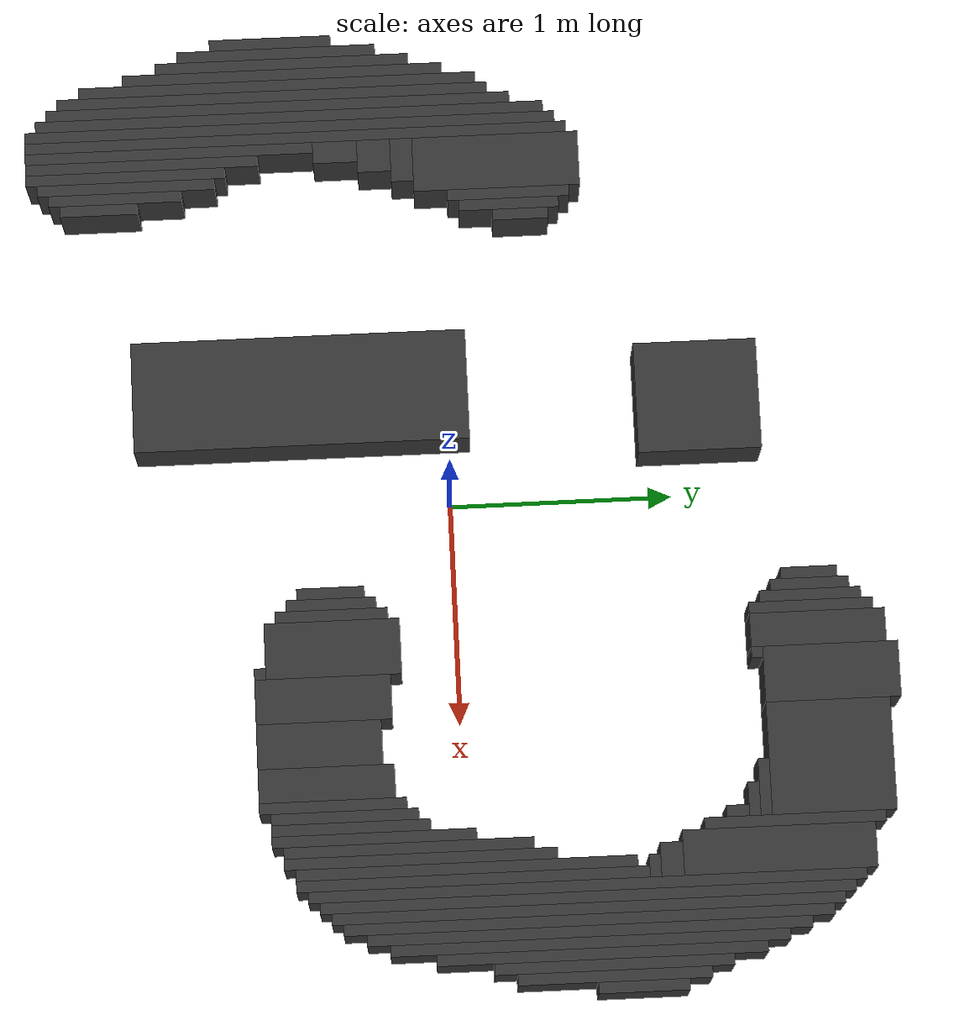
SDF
<?xml version="1.0" ?>
<sdf version="1.7">
  <world name="mapa_mundo">

    <model name="wall_0">
      <static>true</static>
      <link name="link">
        <collision name="collision">
          <geometry>
            <box>
              <size>0.25 0.6000000000000001 0.3</size>
            </box>
          </geometry>
        </collision>
        <visual name="visual">
          <geometry>
            <box>
              <size>0.25 0.6000000000000001 0.3</size>
            </box>
          </geometry>
          <material>
            <ambient>0.2 0.2 0.2 1</ambient>
            <diffuse>0.2 0.2 0.2 1</diffuse>
          </material>
        </visual>
        <pose>0.875 1.6500000000000001 0.15 0 0 0</pose>
      </link>
    </model>
    <model name="wall_1">
      <static>true</static>
      <link name="link">
        <collision name="collision">
          <geometry>
            <box>
              <size>0.15000000000000002 0.6000000000000001 0.3</size>
            </box>
          </geometry>
        </collision>
        <visual name="visual">
          <geometry>
            <box>
              <size>0.15000000000000002 0.6000000000000001 0.3</size>
            </box>
          </geometry>
          <material>
            <ambient>0.2 0.2 0.2 1</ambient>
            <diffuse>0.2 0.2 0.2 1</diffuse>
          </material>
        </visual>
        <pose>0.675 1.6 0.15 0 0 0</pose>
      </link>
    </model>
    <model name="wall_2">
      <static>true</static>
      <link name="link">
        <collision name="collision">
          <geometry>
            <box>
              <size>0.5 0.55 0.3</size>
            </box>
          </geometry>
        </collision>
        <visual name="visual">
          <geometry>
            <box>
              <size>0.5 0.55 0.3</size>
            </box>
          </geometry>
          <material>
            <ambient>0.2 0.2 0.2 1</ambient>
            <diffuse>0.2 0.2 0.2 1</diffuse>
          </material>
        </visual>
        <pose>1.25 1.625 0.15 0 0 0</pose>
      </link>
    </model>
    <model name="wall_3">
      <static>true</static>
      <link name="link">
        <collision name="collision">
          <geometry>
            <box>
              <size>0.05 0.55 0.3</size>
            </box>
          </geometry>
        </collision>
        <visual name="visual">
          <geometry>
            <box>
              <size>0.05 0.55 0.3</size>
            </box>
          </geometry>
          <material>
            <ambient>0.2 0.2 0.2 1</ambient>
            <diffuse>0.2 0.2 0.2 1</diffuse>
          </material>
        </visual>
        <pose>0.5750000000000001 1.5750000000000002 0.15 0 0 0</pose>
      </link>
    </model>
    <model name="wall_4">
      <static>true</static>
      <link name="link">
        <collision name="collision">
          <geometry>
            <box>
              <size>0.05 0.8 0.3</size>
            </box>
          </geometry>
        </collision>
        <visual name="visual">
          <geometry>
            <box>
              <size>0.05 0.8 0.3</size>
            </box>
          </geometry>
          <material>
            <ambient>0.2 0.2 0.2 1</ambient>
            <diffuse>0.2 0.2 0.2 1</diffuse>
          </material>
        </visual>
        <pose>1.5250000000000001 1.4500000000000002 0.15 0 0 0</pose>
      </link>
    </model>
    <model name="wall_5">
      <static>true</static>
      <link name="link">
        <collision name="collision">
          <geometry>
            <box>
              <size>0.05 0.45 0.3</size>
            </box>
          </geometry>
        </collision>
        <visual name="visual">
          <geometry>
            <box>
              <size>0.05 0.45 0.3</size>
            </box>
          </geometry>
          <material>
            <ambient>0.2 0.2 0.2 1</ambient>
            <diffuse>0.2 0.2 0.2 1</diffuse>
          </material>
        </visual>
        <pose>0.525 1.5750000000000002 0.15 0 0 0</pose>
      </link>
    </model>
    <model name="wall_6">
      <static>true</static>
      <link name="link">
        <collision name="collision">
          <geometry>
            <box>
              <size>0.2 0.8500000000000001 0.3</size>
            </box>
          </geometry>
        </collision>
        <visual name="visual">
          <geometry>
            <box>
              <size>0.2 0.8500000000000001 0.3</size>
            </box>
          </geometry>
          <material>
            <ambient>0.2 0.2 0.2 1</ambient>
            <diffuse>0.2 0.2 0.2 1</diffuse>
          </material>
        </visual>
        <pose>1.6500000000000001 1.375 0.15 0 0 0</pose>
      </link>
    </model>
    <model name="wall_7">
      <static>true</static>
      <link name="link">
        <collision name="collision">
          <geometry>
            <box>
              <size>0.05 0.35000000000000003 0.3</size>
            </box>
          </geometry>
        </collision>
        <visual name="visual">
          <geometry>
            <box>
              <size>0.05 0.35000000000000003 0.3</size>
            </box>
          </geometry>
          <material>
            <ambient>0.2 0.2 0.2 1</ambient>
            <diffuse>0.2 0.2 0.2 1</diffuse>
          </material>
        </visual>
        <pose>0.47500000000000003 1.5750000000000002 0.15 0 0 0</pose>
      </link>
    </model>
    <model name="wall_8">
      <static>true</static>
      <link name="link">
        <collision name="collision">
          <geometry>
            <box>
              <size>0.05 2.45 0.3</size>
            </box>
          </geometry>
        </collision>
        <visual name="visual">
          <geometry>
            <box>
              <size>0.05 2.45 0.3</size>
            </box>
          </geometry>
          <material>
            <ambient>0.2 0.2 0.2 1</ambient>
            <diffuse>0.2 0.2 0.2 1</diffuse>
          </material>
        </visual>
        <pose>1.7750000000000001 0.525 0.15 0 0 0</pose>
      </link>
    </model>
    <model name="wall_9">
      <static>true</static>
      <link name="link">
        <collision name="collision">
          <geometry>
            <box>
              <size>0.05 0.25 0.3</size>
            </box>
          </geometry>
        </collision>
        <visual name="visual">
          <geometry>
            <box>
              <size>0.05 0.25 0.3</size>
            </box>
          </geometry>
          <material>
            <ambient>0.2 0.2 0.2 1</ambient>
            <diffuse>0.2 0.2 0.2 1</diffuse>
          </material>
        </visual>
        <pose>0.42500000000000004 1.5750000000000002 0.15 0 0 0</pose>
      </link>
    </model>
    <model name="wall_10">
      <static>true</static>
      <link name="link">
        <collision name="collision">
          <geometry>
            <box>
              <size>0.05 2.35 0.3</size>
            </box>
          </geometry>
        </collision>
        <visual name="visual">
          <geometry>
            <box>
              <size>0.05 2.35 0.3</size>
            </box>
          </geometry>
          <material>
            <ambient>0.2 0.2 0.2 1</ambient>
            <diffuse>0.2 0.2 0.2 1</diffuse>
          </material>
        </visual>
        <pose>1.8250000000000002 0.525 0.15 0 0 0</pose>
      </link>
    </model>
    <model name="wall_11">
      <static>true</static>
      <link name="link">
        <collision name="collision">
          <geometry>
            <box>
              <size>0.05 2.25 0.3</size>
            </box>
          </geometry>
        </collision>
        <visual name="visual">
          <geometry>
            <box>
              <size>0.05 2.25 0.3</size>
            </box>
          </geometry>
          <material>
            <ambient>0.2 0.2 0.2 1</ambient>
            <diffuse>0.2 0.2 0.2 1</diffuse>
          </material>
        </visual>
        <pose>1.875 0.525 0.15 0 0 0</pose>
      </link>
    </model>
    <model name="wall_12">
      <static>true</static>
      <link name="link">
        <collision name="collision">
          <geometry>
            <box>
              <size>0.05 2.15 0.3</size>
            </box>
          </geometry>
        </collision>
        <visual name="visual">
          <geometry>
            <box>
              <size>0.05 2.15 0.3</size>
            </box>
          </geometry>
          <material>
            <ambient>0.2 0.2 0.2 1</ambient>
            <diffuse>0.2 0.2 0.2 1</diffuse>
          </material>
        </visual>
        <pose>1.925 0.525 0.15 0 0 0</pose>
      </link>
    </model>
    <model name="wall_13">
      <static>true</static>
      <link name="link">
        <collision name="collision">
          <geometry>
            <box>
              <size>0.05 1.9500000000000002 0.3</size>
            </box>
          </geometry>
        </collision>
        <visual name="visual">
          <geometry>
            <box>
              <size>0.05 1.9500000000000002 0.3</size>
            </box>
          </geometry>
          <material>
            <ambient>0.2 0.2 0.2 1</ambient>
            <diffuse>0.2 0.2 0.2 1</diffuse>
          </material>
        </visual>
        <pose>1.975 0.525 0.15 0 0 0</pose>
      </link>
    </model>
    <model name="wall_14">
      <static>true</static>
      <link name="link">
        <collision name="collision">
          <geometry>
            <box>
              <size>0.5 0.55 0.3</size>
            </box>
          </geometry>
        </collision>
        <visual name="visual">
          <geometry>
            <box>
              <size>0.5 0.55 0.3</size>
            </box>
          </geometry>
          <material>
            <ambient>0.2 0.2 0.2 1</ambient>
            <diffuse>0.2 0.2 0.2 1</diffuse>
          </material>
        </visual>
        <pose>-0.4 1.125 0.15 0 0 0</pose>
      </link>
    </model>
    <model name="wall_15">
      <static>true</static>
      <link name="link">
        <collision name="collision">
          <geometry>
            <box>
              <size>0.05 1.75 0.3</size>
            </box>
          </geometry>
        </collision>
        <visual name="visual">
          <geometry>
            <box>
              <size>0.05 1.75 0.3</size>
            </box>
          </geometry>
          <material>
            <ambient>0.2 0.2 0.2 1</ambient>
            <diffuse>0.2 0.2 0.2 1</diffuse>
          </material>
        </visual>
        <pose>2.025 0.525 0.15 0 0 0</pose>
      </link>
    </model>
    <model name="wall_16">
      <static>true</static>
      <link name="link">
        <collision name="collision">
          <geometry>
            <box>
              <size>0.05 0.05 0.3</size>
            </box>
          </geometry>
        </collision>
        <visual name="visual">
          <geometry>
            <box>
              <size>0.05 0.05 0.3</size>
            </box>
          </geometry>
          <material>
            <ambient>0.2 0.2 0.2 1</ambient>
            <diffuse>0.2 0.2 0.2 1</diffuse>
          </material>
        </visual>
        <pose>0.775 1.3250000000000002 0.15 0 0 0</pose>
      </link>
    </model>
    <model name="wall_17">
      <static>true</static>
      <link name="link">
        <collision name="collision">
          <geometry>
            <box>
              <size>0.25 0.05 0.3</size>
            </box>
          </geometry>
        </collision>
        <visual name="visual">
          <geometry>
            <box>
              <size>0.25 0.05 0.3</size>
            </box>
          </geometry>
          <material>
            <ambient>0.2 0.2 0.2 1</ambient>
            <diffuse>0.2 0.2 0.2 1</diffuse>
          </material>
        </visual>
        <pose>1.375 1.3250000000000002 0.15 0 0 0</pose>
      </link>
    </model>
    <model name="wall_18">
      <static>true</static>
      <link name="link">
        <collision name="collision">
          <geometry>
            <box>
              <size>0.15000000000000002 0.05 0.3</size>
            </box>
          </geometry>
        </collision>
        <visual name="visual">
          <geometry>
            <box>
              <size>0.15000000000000002 0.05 0.3</size>
            </box>
          </geometry>
          <material>
            <ambient>0.2 0.2 0.2 1</ambient>
            <diffuse>0.2 0.2 0.2 1</diffuse>
          </material>
        </visual>
        <pose>1.425 1.2750000000000001 0.15 0 0 0</pose>
      </link>
    </model>
    <model name="wall_19">
      <static>true</static>
      <link name="link">
        <collision name="collision">
          <geometry>
            <box>
              <size>0.05 1.4500000000000002 0.3</size>
            </box>
          </geometry>
        </collision>
        <visual name="visual">
          <geometry>
            <box>
              <size>0.05 1.4500000000000002 0.3</size>
            </box>
          </geometry>
          <material>
            <ambient>0.2 0.2 0.2 1</ambient>
            <diffuse>0.2 0.2 0.2 1</diffuse>
          </material>
        </visual>
        <pose>2.075 0.5750000000000001 0.15 0 0 0</pose>
      </link>
    </model>
    <model name="wall_20">
      <static>true</static>
      <link name="link">
        <collision name="collision">
          <geometry>
            <box>
              <size>0.05 0.1 0.3</size>
            </box>
          </geometry>
        </collision>
        <visual name="visual">
          <geometry>
            <box>
              <size>0.05 0.1 0.3</size>
            </box>
          </geometry>
          <material>
            <ambient>0.2 0.2 0.2 1</ambient>
            <diffuse>0.2 0.2 0.2 1</diffuse>
          </material>
        </visual>
        <pose>1.475 1.2000000000000002 0.15 0 0 0</pose>
      </link>
    </model>
    <model name="wall_21">
      <static>true</static>
      <link name="link">
        <collision name="collision">
          <geometry>
            <box>
              <size>0.05 1.05 0.3</size>
            </box>
          </geometry>
        </collision>
        <visual name="visual">
          <geometry>
            <box>
              <size>0.05 1.05 0.3</size>
            </box>
          </geometry>
          <material>
            <ambient>0.2 0.2 0.2 1</ambient>
            <diffuse>0.2 0.2 0.2 1</diffuse>
          </material>
        </visual>
        <pose>2.125 0.625 0.15 0 0 0</pose>
      </link>
    </model>
    <model name="wall_22">
      <static>true</static>
      <link name="link">
        <collision name="collision">
          <geometry>
            <box>
              <size>0.05 0.8500000000000001 0.3</size>
            </box>
          </geometry>
        </collision>
        <visual name="visual">
          <geometry>
            <box>
              <size>0.05 0.8500000000000001 0.3</size>
            </box>
          </geometry>
          <material>
            <ambient>0.2 0.2 0.2 1</ambient>
            <diffuse>0.2 0.2 0.2 1</diffuse>
          </material>
        </visual>
        <pose>2.1750000000000003 0.625 0.15 0 0 0</pose>
      </link>
    </model>
    <model name="wall_23">
      <static>true</static>
      <link name="link">
        <collision name="collision">
          <geometry>
            <box>
              <size>0.15000000000000002 0.1 0.3</size>
            </box>
          </geometry>
        </collision>
        <visual name="visual">
          <geometry>
            <box>
              <size>0.15000000000000002 0.1 0.3</size>
            </box>
          </geometry>
          <material>
            <ambient>0.2 0.2 0.2 1</ambient>
            <diffuse>0.2 0.2 0.2 1</diffuse>
          </material>
        </visual>
        <pose>1.675 0.9 0.15 0 0 0</pose>
      </link>
    </model>
    <model name="wall_24">
      <static>true</static>
      <link name="link">
        <collision name="collision">
          <geometry>
            <box>
              <size>0.05 0.4 0.3</size>
            </box>
          </geometry>
        </collision>
        <visual name="visual">
          <geometry>
            <box>
              <size>0.05 0.4 0.3</size>
            </box>
          </geometry>
          <material>
            <ambient>0.2 0.2 0.2 1</ambient>
            <diffuse>0.2 0.2 0.2 1</diffuse>
          </material>
        </visual>
        <pose>2.225 0.75 0.15 0 0 0</pose>
      </link>
    </model>
    <model name="wall_25">
      <static>true</static>
      <link name="link">
        <collision name="collision">
          <geometry>
            <box>
              <size>0.1 0.05 0.3</size>
            </box>
          </geometry>
        </collision>
        <visual name="visual">
          <geometry>
            <box>
              <size>0.1 0.05 0.3</size>
            </box>
          </geometry>
          <material>
            <ambient>0.2 0.2 0.2 1</ambient>
            <diffuse>0.2 0.2 0.2 1</diffuse>
          </material>
        </visual>
        <pose>1.7000000000000002 0.8250000000000001 0.15 0 0 0</pose>
      </link>
    </model>
    <model name="wall_26">
      <static>true</static>
      <link name="link">
        <collision name="collision">
          <geometry>
            <box>
              <size>0.05 1.55 0.3</size>
            </box>
          </geometry>
        </collision>
        <visual name="visual">
          <geometry>
            <box>
              <size>0.05 1.55 0.3</size>
            </box>
          </geometry>
          <material>
            <ambient>0.2 0.2 0.2 1</ambient>
            <diffuse>0.2 0.2 0.2 1</diffuse>
          </material>
        </visual>
        <pose>1.725 0.025 0.15 0 0 0</pose>
      </link>
    </model>
    <model name="wall_27">
      <static>true</static>
      <link name="link">
        <collision name="collision">
          <geometry>
            <box>
              <size>0.05 1.5 0.3</size>
            </box>
          </geometry>
        </collision>
        <visual name="visual">
          <geometry>
            <box>
              <size>0.05 1.5 0.3</size>
            </box>
          </geometry>
          <material>
            <ambient>0.2 0.2 0.2 1</ambient>
            <diffuse>0.2 0.2 0.2 1</diffuse>
          </material>
        </visual>
        <pose>1.675 0.0 0.15 0 0 0</pose>
      </link>
    </model>
    <model name="wall_28">
      <static>true</static>
      <link name="link">
        <collision name="collision">
          <geometry>
            <box>
              <size>0.25 0.75 0.3</size>
            </box>
          </geometry>
        </collision>
        <visual name="visual">
          <geometry>
            <box>
              <size>0.25 0.75 0.3</size>
            </box>
          </geometry>
          <material>
            <ambient>0.2 0.2 0.2 1</ambient>
            <diffuse>0.2 0.2 0.2 1</diffuse>
          </material>
        </visual>
        <pose>-1.5250000000000001 0.275 0.15 0 0 0</pose>
      </link>
    </model>
    <model name="wall_29">
      <static>true</static>
      <link name="link">
        <collision name="collision">
          <geometry>
            <box>
              <size>0.05 2.45 0.3</size>
            </box>
          </geometry>
        </collision>
        <visual name="visual">
          <geometry>
            <box>
              <size>0.05 2.45 0.3</size>
            </box>
          </geometry>
          <material>
            <ambient>0.2 0.2 0.2 1</ambient>
            <diffuse>0.2 0.2 0.2 1</diffuse>
          </material>
        </visual>
        <pose>-1.675 -0.625 0.15 0 0 0</pose>
      </link>
    </model>
    <model name="wall_30">
      <static>true</static>
      <link name="link">
        <collision name="collision">
          <geometry>
            <box>
              <size>0.05 0.55 0.3</size>
            </box>
          </geometry>
        </collision>
        <visual name="visual">
          <geometry>
            <box>
              <size>0.05 0.55 0.3</size>
            </box>
          </geometry>
          <material>
            <ambient>0.2 0.2 0.2 1</ambient>
            <diffuse>0.2 0.2 0.2 1</diffuse>
          </material>
        </visual>
        <pose>-1.375 0.325 0.15 0 0 0</pose>
      </link>
    </model>
    <model name="wall_31">
      <static>true</static>
      <link name="link">
        <collision name="collision">
          <geometry>
            <box>
              <size>0.05 2.4000000000000004 0.3</size>
            </box>
          </geometry>
        </collision>
        <visual name="visual">
          <geometry>
            <box>
              <size>0.05 2.4000000000000004 0.3</size>
            </box>
          </geometry>
          <material>
            <ambient>0.2 0.2 0.2 1</ambient>
            <diffuse>0.2 0.2 0.2 1</diffuse>
          </material>
        </visual>
        <pose>-1.725 -0.65 0.15 0 0 0</pose>
      </link>
    </model>
    <model name="wall_32">
      <static>true</static>
      <link name="link">
        <collision name="collision">
          <geometry>
            <box>
              <size>0.05 0.45 0.3</size>
            </box>
          </geometry>
        </collision>
        <visual name="visual">
          <geometry>
            <box>
              <size>0.05 0.45 0.3</size>
            </box>
          </geometry>
          <material>
            <ambient>0.2 0.2 0.2 1</ambient>
            <diffuse>0.2 0.2 0.2 1</diffuse>
          </material>
        </visual>
        <pose>-1.3250000000000002 0.325 0.15 0 0 0</pose>
      </link>
    </model>
    <model name="wall_33">
      <static>true</static>
      <link name="link">
        <collision name="collision">
          <geometry>
            <box>
              <size>0.05 2.3000000000000003 0.3</size>
            </box>
          </geometry>
        </collision>
        <visual name="visual">
          <geometry>
            <box>
              <size>0.05 2.3000000000000003 0.3</size>
            </box>
          </geometry>
          <material>
            <ambient>0.2 0.2 0.2 1</ambient>
            <diffuse>0.2 0.2 0.2 1</diffuse>
          </material>
        </visual>
        <pose>-1.7750000000000001 -0.65 0.15 0 0 0</pose>
      </link>
    </model>
    <model name="wall_34">
      <static>true</static>
      <link name="link">
        <collision name="collision">
          <geometry>
            <box>
              <size>0.05 0.25 0.3</size>
            </box>
          </geometry>
        </collision>
        <visual name="visual">
          <geometry>
            <box>
              <size>0.05 0.25 0.3</size>
            </box>
          </geometry>
          <material>
            <ambient>0.2 0.2 0.2 1</ambient>
            <diffuse>0.2 0.2 0.2 1</diffuse>
          </material>
        </visual>
        <pose>-1.2750000000000001 0.375 0.15 0 0 0</pose>
      </link>
    </model>
    <model name="wall_35">
      <static>true</static>
      <link name="link">
        <collision name="collision">
          <geometry>
            <box>
              <size>0.05 1.2000000000000002 0.3</size>
            </box>
          </geometry>
        </collision>
        <visual name="visual">
          <geometry>
            <box>
              <size>0.05 1.2000000000000002 0.3</size>
            </box>
          </geometry>
          <material>
            <ambient>0.2 0.2 0.2 1</ambient>
            <diffuse>0.2 0.2 0.2 1</diffuse>
          </material>
        </visual>
        <pose>1.625 -0.2 0.15 0 0 0</pose>
      </link>
    </model>
    <model name="wall_36">
      <static>true</static>
      <link name="link">
        <collision name="collision">
          <geometry>
            <box>
              <size>0.05 2.1 0.3</size>
            </box>
          </geometry>
        </collision>
        <visual name="visual">
          <geometry>
            <box>
              <size>0.05 2.1 0.3</size>
            </box>
          </geometry>
          <material>
            <ambient>0.2 0.2 0.2 1</ambient>
            <diffuse>0.2 0.2 0.2 1</diffuse>
          </material>
        </visual>
        <pose>-1.8250000000000002 -0.7000000000000001 0.15 0 0 0</pose>
      </link>
    </model>
    <model name="wall_37">
      <static>true</static>
      <link name="link">
        <collision name="collision">
          <geometry>
            <box>
              <size>0.05 1.1 0.3</size>
            </box>
          </geometry>
        </collision>
        <visual name="visual">
          <geometry>
            <box>
              <size>0.05 1.1 0.3</size>
            </box>
          </geometry>
          <material>
            <ambient>0.2 0.2 0.2 1</ambient>
            <diffuse>0.2 0.2 0.2 1</diffuse>
          </material>
        </visual>
        <pose>1.5750000000000002 -0.25 0.15 0 0 0</pose>
      </link>
    </model>
    <model name="wall_38">
      <static>true</static>
      <link name="link">
        <collision name="collision">
          <geometry>
            <box>
              <size>0.05 1.9500000000000002 0.3</size>
            </box>
          </geometry>
        </collision>
        <visual name="visual">
          <geometry>
            <box>
              <size>0.05 1.9500000000000002 0.3</size>
            </box>
          </geometry>
          <material>
            <ambient>0.2 0.2 0.2 1</ambient>
            <diffuse>0.2 0.2 0.2 1</diffuse>
          </material>
        </visual>
        <pose>-1.875 -0.7250000000000001 0.15 0 0 0</pose>
      </link>
    </model>
    <model name="wall_39">
      <static>true</static>
      <link name="link">
        <collision name="collision">
          <geometry>
            <box>
              <size>0.05 1.8 0.3</size>
            </box>
          </geometry>
        </collision>
        <visual name="visual">
          <geometry>
            <box>
              <size>0.05 1.8 0.3</size>
            </box>
          </geometry>
          <material>
            <ambient>0.2 0.2 0.2 1</ambient>
            <diffuse>0.2 0.2 0.2 1</diffuse>
          </material>
        </visual>
        <pose>-1.925 -0.7000000000000001 0.15 0 0 0</pose>
      </link>
    </model>
    <model name="wall_40">
      <static>true</static>
      <link name="link">
        <collision name="collision">
          <geometry>
            <box>
              <size>0.5 1.5 0.3</size>
            </box>
          </geometry>
        </collision>
        <visual name="visual">
          <geometry>
            <box>
              <size>0.5 1.5 0.3</size>
            </box>
          </geometry>
          <material>
            <ambient>0.2 0.2 0.2 1</ambient>
            <diffuse>0.2 0.2 0.2 1</diffuse>
          </material>
        </visual>
        <pose>-0.5 -0.65 0.15 0 0 0</pose>
      </link>
    </model>
    <model name="wall_41">
      <static>true</static>
      <link name="link">
        <collision name="collision">
          <geometry>
            <box>
              <size>0.05 1.4500000000000002 0.3</size>
            </box>
          </geometry>
        </collision>
        <visual name="visual">
          <geometry>
            <box>
              <size>0.05 1.4500000000000002 0.3</size>
            </box>
          </geometry>
          <material>
            <ambient>0.2 0.2 0.2 1</ambient>
            <diffuse>0.2 0.2 0.2 1</diffuse>
          </material>
        </visual>
        <pose>-1.975 -0.675 0.15 0 0 0</pose>
      </link>
    </model>
    <model name="wall_42">
      <static>true</static>
      <link name="link">
        <collision name="collision">
          <geometry>
            <box>
              <size>0.05 0.9 0.3</size>
            </box>
          </geometry>
        </collision>
        <visual name="visual">
          <geometry>
            <box>
              <size>0.05 0.9 0.3</size>
            </box>
          </geometry>
          <material>
            <ambient>0.2 0.2 0.2 1</ambient>
            <diffuse>0.2 0.2 0.2 1</diffuse>
          </material>
        </visual>
        <pose>1.5250000000000001 -0.4 0.15 0 0 0</pose>
      </link>
    </model>
    <model name="wall_43">
      <static>true</static>
      <link name="link">
        <collision name="collision">
          <geometry>
            <box>
              <size>0.05 1.1500000000000001 0.3</size>
            </box>
          </geometry>
        </collision>
        <visual name="visual">
          <geometry>
            <box>
              <size>0.05 1.1500000000000001 0.3</size>
            </box>
          </geometry>
          <material>
            <ambient>0.2 0.2 0.2 1</ambient>
            <diffuse>0.2 0.2 0.2 1</diffuse>
          </material>
        </visual>
        <pose>-2.025 -0.675 0.15 0 0 0</pose>
      </link>
    </model>
    <model name="wall_44">
      <static>true</static>
      <link name="link">
        <collision name="collision">
          <geometry>
            <box>
              <size>0.2 0.1 0.3</size>
            </box>
          </geometry>
        </collision>
        <visual name="visual">
          <geometry>
            <box>
              <size>0.2 0.1 0.3</size>
            </box>
          </geometry>
          <material>
            <ambient>0.2 0.2 0.2 1</ambient>
            <diffuse>0.2 0.2 0.2 1</diffuse>
          </material>
        </visual>
        <pose>-1.55 -0.15000000000000002 0.15 0 0 0</pose>
      </link>
    </model>
    <model name="wall_45">
      <static>true</static>
      <link name="link">
        <collision name="collision">
          <geometry>
            <box>
              <size>0.05 0.7000000000000001 0.3</size>
            </box>
          </geometry>
        </collision>
        <visual name="visual">
          <geometry>
            <box>
              <size>0.05 0.7000000000000001 0.3</size>
            </box>
          </geometry>
          <material>
            <ambient>0.2 0.2 0.2 1</ambient>
            <diffuse>0.2 0.2 0.2 1</diffuse>
          </material>
        </visual>
        <pose>1.475 -0.5 0.15 0 0 0</pose>
      </link>
    </model>
    <model name="wall_46">
      <static>true</static>
      <link name="link">
        <collision name="collision">
          <geometry>
            <box>
              <size>0.15000000000000002 0.15000000000000002 0.3</size>
            </box>
          </geometry>
        </collision>
        <visual name="visual">
          <geometry>
            <box>
              <size>0.15000000000000002 0.15000000000000002 0.3</size>
            </box>
          </geometry>
          <material>
            <ambient>0.2 0.2 0.2 1</ambient>
            <diffuse>0.2 0.2 0.2 1</diffuse>
          </material>
        </visual>
        <pose>-1.5750000000000002 -0.275 0.15 0 0 0</pose>
      </link>
    </model>
    <model name="wall_47">
      <static>true</static>
      <link name="link">
        <collision name="collision">
          <geometry>
            <box>
              <size>0.05 0.65 0.3</size>
            </box>
          </geometry>
        </collision>
        <visual name="visual">
          <geometry>
            <box>
              <size>0.05 0.65 0.3</size>
            </box>
          </geometry>
          <material>
            <ambient>0.2 0.2 0.2 1</ambient>
            <diffuse>0.2 0.2 0.2 1</diffuse>
          </material>
        </visual>
        <pose>1.425 -0.525 0.15 0 0 0</pose>
      </link>
    </model>
    <model name="wall_48">
      <static>true</static>
      <link name="link">
        <collision name="collision">
          <geometry>
            <box>
              <size>0.05 0.9 0.3</size>
            </box>
          </geometry>
        </collision>
        <visual name="visual">
          <geometry>
            <box>
              <size>0.05 0.9 0.3</size>
            </box>
          </geometry>
          <material>
            <ambient>0.2 0.2 0.2 1</ambient>
            <diffuse>0.2 0.2 0.2 1</diffuse>
          </material>
        </visual>
        <pose>-2.075 -0.7000000000000001 0.15 0 0 0</pose>
      </link>
    </model>
    <model name="wall_49">
      <static>true</static>
      <link name="link">
        <collision name="collision">
          <geometry>
            <box>
              <size>0.25 0.6000000000000001 0.3</size>
            </box>
          </geometry>
        </collision>
        <visual name="visual">
          <geometry>
            <box>
              <size>0.25 0.6000000000000001 0.3</size>
            </box>
          </geometry>
          <material>
            <ambient>0.2 0.2 0.2 1</ambient>
            <diffuse>0.2 0.2 0.2 1</diffuse>
          </material>
        </visual>
        <pose>0.675 -0.55 0.15 0 0 0</pose>
      </link>
    </model>
    <model name="wall_50">
      <static>true</static>
      <link name="link">
        <collision name="collision">
          <geometry>
            <box>
              <size>0.05 0.65 0.3</size>
            </box>
          </geometry>
        </collision>
        <visual name="visual">
          <geometry>
            <box>
              <size>0.05 0.65 0.3</size>
            </box>
          </geometry>
          <material>
            <ambient>0.2 0.2 0.2 1</ambient>
            <diffuse>0.2 0.2 0.2 1</diffuse>
          </material>
        </visual>
        <pose>1.375 -0.5750000000000001 0.15 0 0 0</pose>
      </link>
    </model>
    <model name="wall_51">
      <static>true</static>
      <link name="link">
        <collision name="collision">
          <geometry>
            <box>
              <size>0.05 0.5 0.3</size>
            </box>
          </geometry>
        </collision>
        <visual name="visual">
          <geometry>
            <box>
              <size>0.05 0.5 0.3</size>
            </box>
          </geometry>
          <material>
            <ambient>0.2 0.2 0.2 1</ambient>
            <diffuse>0.2 0.2 0.2 1</diffuse>
          </material>
        </visual>
        <pose>0.525 -0.55 0.15 0 0 0</pose>
      </link>
    </model>
    <model name="wall_52">
      <static>true</static>
      <link name="link">
        <collision name="collision">
          <geometry>
            <box>
              <size>0.2 0.6000000000000001 0.3</size>
            </box>
          </geometry>
        </collision>
        <visual name="visual">
          <geometry>
            <box>
              <size>0.2 0.6000000000000001 0.3</size>
            </box>
          </geometry>
          <material>
            <ambient>0.2 0.2 0.2 1</ambient>
            <diffuse>0.2 0.2 0.2 1</diffuse>
          </material>
        </visual>
        <pose>0.9 -0.6000000000000001 0.15 0 0 0</pose>
      </link>
    </model>
    <model name="wall_53">
      <static>true</static>
      <link name="link">
        <collision name="collision">
          <geometry>
            <box>
              <size>0.15000000000000002 0.6000000000000001 0.3</size>
            </box>
          </geometry>
        </collision>
        <visual name="visual">
          <geometry>
            <box>
              <size>0.15000000000000002 0.6000000000000001 0.3</size>
            </box>
          </geometry>
          <material>
            <ambient>0.2 0.2 0.2 1</ambient>
            <diffuse>0.2 0.2 0.2 1</diffuse>
          </material>
        </visual>
        <pose>1.2750000000000001 -0.6000000000000001 0.15 0 0 0</pose>
      </link>
    </model>
    <model name="wall_54">
      <static>true</static>
      <link name="link">
        <collision name="collision">
          <geometry>
            <box>
              <size>0.1 0.2 0.3</size>
            </box>
          </geometry>
        </collision>
        <visual name="visual">
          <geometry>
            <box>
              <size>0.1 0.2 0.3</size>
            </box>
          </geometry>
          <material>
            <ambient>0.2 0.2 0.2 1</ambient>
            <diffuse>0.2 0.2 0.2 1</diffuse>
          </material>
        </visual>
        <pose>-1.6 -0.45 0.15 0 0 0</pose>
      </link>
    </model>
    <model name="wall_55">
      <static>true</static>
      <link name="link">
        <collision name="collision">
          <geometry>
            <box>
              <size>0.05 0.4 0.3</size>
            </box>
          </geometry>
        </collision>
        <visual name="visual">
          <geometry>
            <box>
              <size>0.05 0.4 0.3</size>
            </box>
          </geometry>
          <material>
            <ambient>0.2 0.2 0.2 1</ambient>
            <diffuse>0.2 0.2 0.2 1</diffuse>
          </material>
        </visual>
        <pose>0.47500000000000003 -0.55 0.15 0 0 0</pose>
      </link>
    </model>
    <model name="wall_56">
      <static>true</static>
      <link name="link">
        <collision name="collision">
          <geometry>
            <box>
              <size>0.2 0.55 0.3</size>
            </box>
          </geometry>
        </collision>
        <visual name="visual">
          <geometry>
            <box>
              <size>0.2 0.55 0.3</size>
            </box>
          </geometry>
          <material>
            <ambient>0.2 0.2 0.2 1</ambient>
            <diffuse>0.2 0.2 0.2 1</diffuse>
          </material>
        </visual>
        <pose>1.1 -0.625 0.15 0 0 0</pose>
      </link>
    </model>
    <model name="wall_57">
      <static>true</static>
      <link name="link">
        <collision name="collision">
          <geometry>
            <box>
              <size>0.05 0.30000000000000004 0.3</size>
            </box>
          </geometry>
        </collision>
        <visual name="visual">
          <geometry>
            <box>
              <size>0.05 0.30000000000000004 0.3</size>
            </box>
          </geometry>
          <material>
            <ambient>0.2 0.2 0.2 1</ambient>
            <diffuse>0.2 0.2 0.2 1</diffuse>
          </material>
        </visual>
        <pose>0.42500000000000004 -0.55 0.15 0 0 0</pose>
      </link>
    </model>
    <model name="wall_58">
      <static>true</static>
      <link name="link">
        <collision name="collision">
          <geometry>
            <box>
              <size>0.05 0.55 0.3</size>
            </box>
          </geometry>
        </collision>
        <visual name="visual">
          <geometry>
            <box>
              <size>0.05 0.55 0.3</size>
            </box>
          </geometry>
          <material>
            <ambient>0.2 0.2 0.2 1</ambient>
            <diffuse>0.2 0.2 0.2 1</diffuse>
          </material>
        </visual>
        <pose>-2.125 -0.7250000000000001 0.15 0 0 0</pose>
      </link>
    </model>
    <model name="wall_59">
      <static>true</static>
      <link name="link">
        <collision name="collision">
          <geometry>
            <box>
              <size>0.05 1.3 0.3</size>
            </box>
          </geometry>
        </collision>
        <visual name="visual">
          <geometry>
            <box>
              <size>0.05 1.3 0.3</size>
            </box>
          </geometry>
          <material>
            <ambient>0.2 0.2 0.2 1</ambient>
            <diffuse>0.2 0.2 0.2 1</diffuse>
          </material>
        </visual>
        <pose>-1.625 -1.2000000000000002 0.15 0 0 0</pose>
      </link>
    </model>
    <model name="wall_60">
      <static>true</static>
      <link name="link">
        <collision name="collision">
          <geometry>
            <box>
              <size>0.05 1.05 0.3</size>
            </box>
          </geometry>
        </collision>
        <visual name="visual">
          <geometry>
            <box>
              <size>0.05 1.05 0.3</size>
            </box>
          </geometry>
          <material>
            <ambient>0.2 0.2 0.2 1</ambient>
            <diffuse>0.2 0.2 0.2 1</diffuse>
          </material>
        </visual>
        <pose>-1.5750000000000002 -1.3250000000000002 0.15 0 0 0</pose>
      </link>
    </model>
    <model name="wall_61">
      <static>true</static>
      <link name="link">
        <collision name="collision">
          <geometry>
            <box>
              <size>0.05 0.05 0.3</size>
            </box>
          </geometry>
        </collision>
        <visual name="visual">
          <geometry>
            <box>
              <size>0.05 0.05 0.3</size>
            </box>
          </geometry>
          <material>
            <ambient>0.2 0.2 0.2 1</ambient>
            <diffuse>0.2 0.2 0.2 1</diffuse>
          </material>
        </visual>
        <pose>0.775 -0.875 0.15 0 0 0</pose>
      </link>
    </model>
    <model name="wall_62">
      <static>true</static>
      <link name="link">
        <collision name="collision">
          <geometry>
            <box>
              <size>0.05 0.9 0.3</size>
            </box>
          </geometry>
        </collision>
        <visual name="visual">
          <geometry>
            <box>
              <size>0.05 0.9 0.3</size>
            </box>
          </geometry>
          <material>
            <ambient>0.2 0.2 0.2 1</ambient>
            <diffuse>0.2 0.2 0.2 1</diffuse>
          </material>
        </visual>
        <pose>-1.5250000000000001 -1.4000000000000001 0.15 0 0 0</pose>
      </link>
    </model>
    <model name="wall_63">
      <static>true</static>
      <link name="link">
        <collision name="collision">
          <geometry>
            <box>
              <size>0.05 0.8 0.3</size>
            </box>
          </geometry>
        </collision>
        <visual name="visual">
          <geometry>
            <box>
              <size>0.05 0.8 0.3</size>
            </box>
          </geometry>
          <material>
            <ambient>0.2 0.2 0.2 1</ambient>
            <diffuse>0.2 0.2 0.2 1</diffuse>
          </material>
        </visual>
        <pose>-1.475 -1.4000000000000001 0.15 0 0 0</pose>
      </link>
    </model>
    <model name="wall_64">
      <static>true</static>
      <link name="link">
        <collision name="collision">
          <geometry>
            <box>
              <size>0.05 0.6000000000000001 0.3</size>
            </box>
          </geometry>
        </collision>
        <visual name="visual">
          <geometry>
            <box>
              <size>0.05 0.6000000000000001 0.3</size>
            </box>
          </geometry>
          <material>
            <ambient>0.2 0.2 0.2 1</ambient>
            <diffuse>0.2 0.2 0.2 1</diffuse>
          </material>
        </visual>
        <pose>-1.425 -1.4500000000000002 0.15 0 0 0</pose>
      </link>
    </model>
    <model name="wall_65">
      <static>true</static>
      <link name="link">
        <collision name="collision">
          <geometry>
            <box>
              <size>0.05 0.35000000000000003 0.3</size>
            </box>
          </geometry>
        </collision>
        <visual name="visual">
          <geometry>
            <box>
              <size>0.05 0.35000000000000003 0.3</size>
            </box>
          </geometry>
          <material>
            <ambient>0.2 0.2 0.2 1</ambient>
            <diffuse>0.2 0.2 0.2 1</diffuse>
          </material>
        </visual>
        <pose>-1.375 -1.5250000000000001 0.15 0 0 0</pose>
      </link>
    </model>
  </world>
</sdf>
